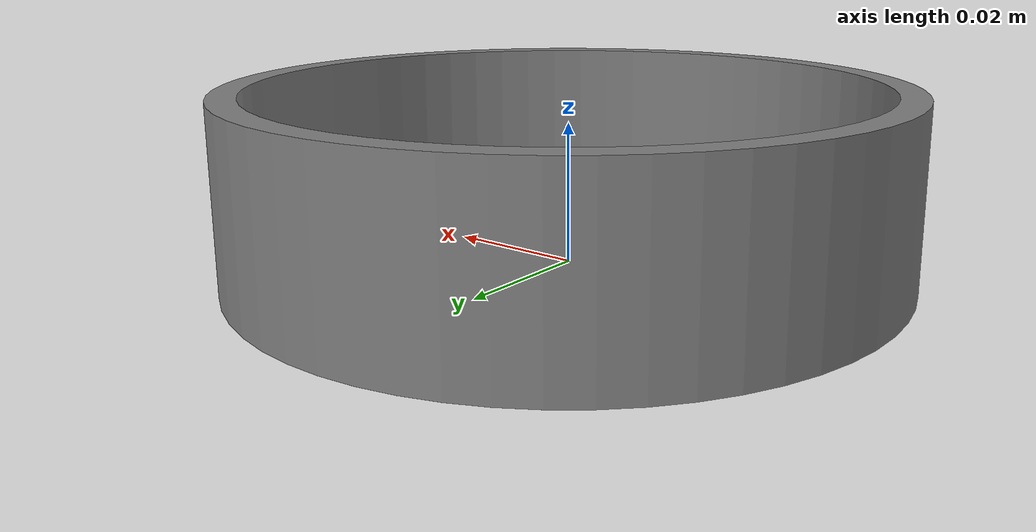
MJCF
<?xml version="1.0" ?>
<mujoco model="yellow_tape">
  <asset>
    <mesh file="./yellow_tape_cad.obj" name="yellow_tape_mesh" scale="1 1 1"/>
  </asset>
  <worldbody>
    <body>
      <body name="object">
        <geom type="mesh" mesh="yellow_tape_mesh" solref="0.02 1.0" solimp="0.9 0.95 0.001" condim="4" friction="1 0.5 0.01" group="1"/>
        <geom type="mesh" mesh="yellow_tape_mesh" rgba="1 1 0 1" group="0"/>

        <!-- Collision geometry (decomposed primitives) -->
      </body>
      <site name="bottom_site" pos="-0.00015647895634174347 -3.774091601371765e-05 -0.012816530652344227" size="0.002" rgba="0 0 0 0"/>
      <site name="top_site" pos="-0.00015647895634174347 -3.774091601371765e-05 0.012583469040691853" size="0.002" rgba="0 0 0 0"/>
      <site name="horizontal_radius_site" pos="0.06717514468687408 0 0" size="0.002" rgba="0 0 0 0"/>
    </body>
  </worldbody>
</mujoco>
